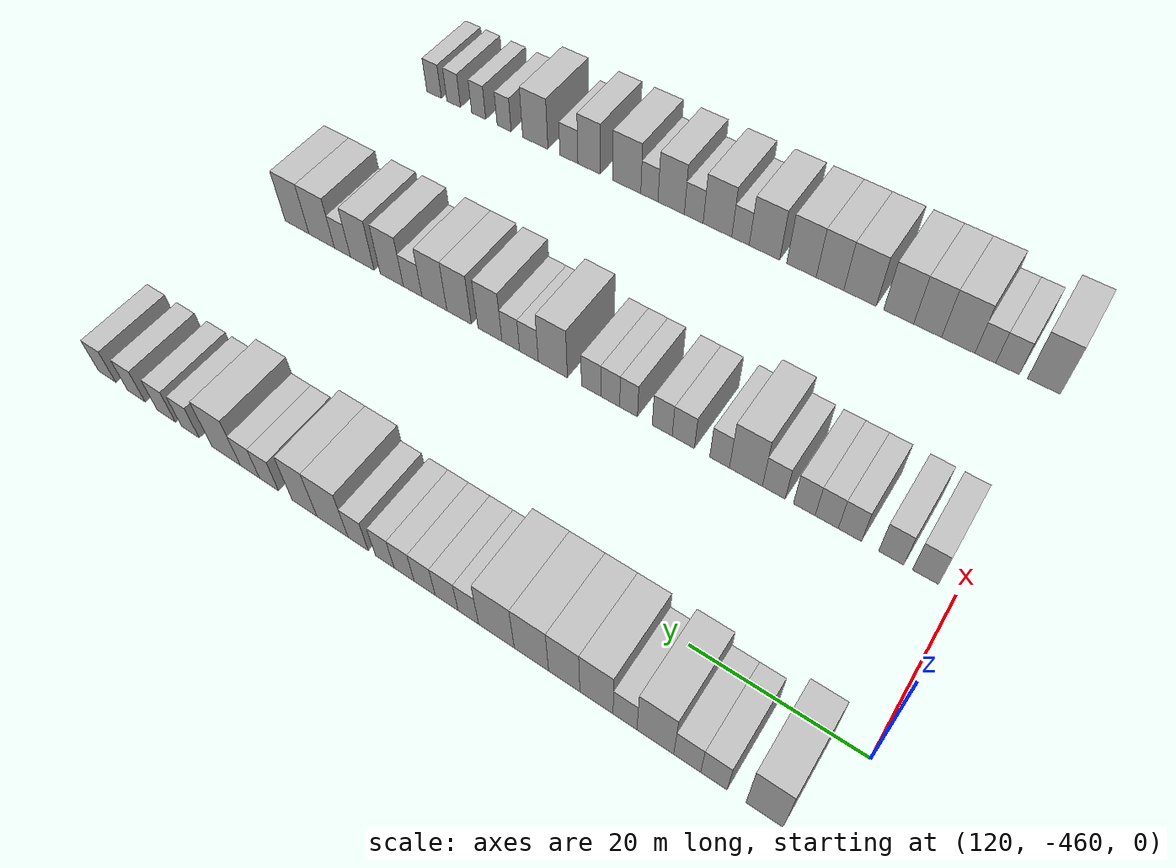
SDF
<sdf version="1.6">
 <world name="default">
  <model name="building_694">
   <static>1</static>
   <pose>115.0000 -454.0621 0 0.000000 0.000000 0.000000</pose>
   <link name="link">
    <pose>0 0 4.50 0 0 0</pose>
    <collision name="collision"><geometry><box><size>10.0000 3.8624 9.0000</size></box></geometry></collision>
    <visual name="visual">
     <cast_shadows>0</cast_shadows>
     <geometry><box><size>10.0000 3.8624 9.0000</size></box></geometry>
     <material>
      <script>
       <uri>model://HANNAS_wall/materials/scripts</uri>
       <uri>model://HANNAS_wall/materials/textures</uri>
       <name>vrc/HANNAS_wall</name>
      </script>
     </material>
    </visual>
   </link>
  </model>
  <model name="building_695">
   <static>1</static>
   <pose>115.0000 -448.7033 0 0.000000 0.000000 0.000000</pose>
   <link name="link">
    <pose>0 0 3.00 0 0 0</pose>
    <collision name="collision"><geometry><box><size>10.0000 2.8552 6.0000</size></box></geometry></collision>
    <visual name="visual">
     <cast_shadows>0</cast_shadows>
     <geometry><box><size>10.0000 2.8552 6.0000</size></box></geometry>
     <material>
      <script>
       <uri>model://HANNAS_wall/materials/scripts</uri>
       <uri>model://HANNAS_wall/materials/textures</uri>
       <name>vrc/HANNAS_wall</name>
      </script>
     </material>
    </visual>
   </link>
  </model>
  <model name="building_696">
   <static>1</static>
   <pose>115.0000 -445.7946 0 0.000000 0.000000 0.000000</pose>
   <link name="link">
    <pose>0 0 3.00 0 0 0</pose>
    <collision name="collision"><geometry><box><size>10.0000 2.9622 6.0000</size></box></geometry></collision>
    <visual name="visual">
     <cast_shadows>0</cast_shadows>
     <geometry><box><size>10.0000 2.9622 6.0000</size></box></geometry>
     <material>
      <script>
       <uri>model://HANNAS_wall/materials/scripts</uri>
       <uri>model://HANNAS_wall/materials/textures</uri>
       <name>vrc/HANNAS_wall</name>
      </script>
     </material>
    </visual>
   </link>
  </model>
  <model name="building_697">
   <static>1</static>
   <pose>115.0000 -442.2483 0 0.000000 0.000000 0.000000</pose>
   <link name="link">
    <pose>0 0 4.50 0 0 0</pose>
    <collision name="collision"><geometry><box><size>10.0000 4.1305 9.0000</size></box></geometry></collision>
    <visual name="visual">
     <cast_shadows>0</cast_shadows>
     <geometry><box><size>10.0000 4.1305 9.0000</size></box></geometry>
     <material>
      <script>
       <uri>model://HANNAS_wall/materials/scripts</uri>
       <uri>model://HANNAS_wall/materials/textures</uri>
       <name>vrc/HANNAS_wall</name>
      </script>
     </material>
    </visual>
   </link>
  </model>
  <model name="building_698">
   <static>1</static>
   <pose>115.0000 -438.8163 0 0.000000 0.000000 0.000000</pose>
   <link name="link">
    <pose>0 0 3.00 0 0 0</pose>
    <collision name="collision"><geometry><box><size>10.0000 2.7336 6.0000</size></box></geometry></collision>
    <visual name="visual">
     <cast_shadows>0</cast_shadows>
     <geometry><box><size>10.0000 2.7336 6.0000</size></box></geometry>
     <material>
      <script>
       <uri>model://HANNAS_wall/materials/scripts</uri>
       <uri>model://HANNAS_wall/materials/textures</uri>
       <name>vrc/HANNAS_wall</name>
      </script>
     </material>
    </visual>
   </link>
  </model>
  <model name="building_699">
   <static>1</static>
   <pose>115.0000 -435.5148 0 0.000000 0.000000 0.000000</pose>
   <link name="link">
    <pose>0 0 4.50 0 0 0</pose>
    <collision name="collision"><geometry><box><size>10.0000 3.8695 9.0000</size></box></geometry></collision>
    <visual name="visual">
     <cast_shadows>0</cast_shadows>
     <geometry><box><size>10.0000 3.8695 9.0000</size></box></geometry>
     <material>
      <script>
       <uri>model://HANNAS_wall/materials/scripts</uri>
       <uri>model://HANNAS_wall/materials/textures</uri>
       <name>vrc/HANNAS_wall</name>
      </script>
     </material>
    </visual>
   </link>
  </model>
  <model name="building_700">
   <static>1</static>
   <pose>115.0000 -431.7060 0 0.000000 0.000000 0.000000</pose>
   <link name="link">
    <pose>0 0 4.50 0 0 0</pose>
    <collision name="collision"><geometry><box><size>10.0000 3.7481 9.0000</size></box></geometry></collision>
    <visual name="visual">
     <cast_shadows>0</cast_shadows>
     <geometry><box><size>10.0000 3.7481 9.0000</size></box></geometry>
     <material>
      <script>
       <uri>model://HANNAS_wall/materials/scripts</uri>
       <uri>model://HANNAS_wall/materials/textures</uri>
       <name>vrc/HANNAS_wall</name>
      </script>
     </material>
    </visual>
   </link>
  </model>
  <model name="building_701">
   <static>1</static>
   <pose>115.0000 -427.7330 0 0.000000 0.000000 0.000000</pose>
   <link name="link">
    <pose>0 0 4.50 0 0 0</pose>
    <collision name="collision"><geometry><box><size>10.0000 4.1979 9.0000</size></box></geometry></collision>
    <visual name="visual">
     <cast_shadows>0</cast_shadows>
     <geometry><box><size>10.0000 4.1979 9.0000</size></box></geometry>
     <material>
      <script>
       <uri>model://HANNAS_wall/materials/scripts</uri>
       <uri>model://HANNAS_wall/materials/textures</uri>
       <name>vrc/HANNAS_wall</name>
      </script>
     </material>
    </visual>
   </link>
  </model>
  <model name="building_702">
   <static>1</static>
   <pose>115.0000 -423.3927 0 0.000000 0.000000 0.000000</pose>
   <link name="link">
    <pose>0 0 4.50 0 0 0</pose>
    <collision name="collision"><geometry><box><size>10.0000 4.4827 9.0000</size></box></geometry></collision>
    <visual name="visual">
     <cast_shadows>0</cast_shadows>
     <geometry><box><size>10.0000 4.4827 9.0000</size></box></geometry>
     <material>
      <script>
       <uri>model://HANNAS_wall/materials/scripts</uri>
       <uri>model://HANNAS_wall/materials/textures</uri>
       <name>vrc/HANNAS_wall</name>
      </script>
     </material>
    </visual>
   </link>
  </model>
  <model name="building_703">
   <static>1</static>
   <pose>115.0000 -419.8408 0 0.000000 0.000000 0.000000</pose>
   <link name="link">
    <pose>0 0 3.00 0 0 0</pose>
    <collision name="collision"><geometry><box><size>10.0000 2.6210 6.0000</size></box></geometry></collision>
    <visual name="visual">
     <cast_shadows>0</cast_shadows>
     <geometry><box><size>10.0000 2.6210 6.0000</size></box></geometry>
     <material>
      <script>
       <uri>model://HANNAS_wall/materials/scripts</uri>
       <uri>model://HANNAS_wall/materials/textures</uri>
       <name>vrc/HANNAS_wall</name>
      </script>
     </material>
    </visual>
   </link>
  </model>
  <model name="building_704">
   <static>1</static>
   <pose>115.0000 -417.0368 0 0.000000 0.000000 0.000000</pose>
   <link name="link">
    <pose>0 0 3.00 0 0 0</pose>
    <collision name="collision"><geometry><box><size>10.0000 2.9869 6.0000</size></box></geometry></collision>
    <visual name="visual">
     <cast_shadows>0</cast_shadows>
     <geometry><box><size>10.0000 2.9869 6.0000</size></box></geometry>
     <material>
      <script>
       <uri>model://HANNAS_wall/materials/scripts</uri>
       <uri>model://HANNAS_wall/materials/textures</uri>
       <name>vrc/HANNAS_wall</name>
      </script>
     </material>
    </visual>
   </link>
  </model>
  <model name="building_705">
   <static>1</static>
   <pose>115.0000 -414.1468 0 0.000000 0.000000 0.000000</pose>
   <link name="link">
    <pose>0 0 3.00 0 0 0</pose>
    <collision name="collision"><geometry><box><size>10.0000 2.7932 6.0000</size></box></geometry></collision>
    <visual name="visual">
     <cast_shadows>0</cast_shadows>
     <geometry><box><size>10.0000 2.7932 6.0000</size></box></geometry>
     <material>
      <script>
       <uri>model://HANNAS_wall/materials/scripts</uri>
       <uri>model://HANNAS_wall/materials/textures</uri>
       <name>vrc/HANNAS_wall</name>
      </script>
     </material>
    </visual>
   </link>
  </model>
  <model name="building_706">
   <static>1</static>
   <pose>115.0000 -411.3969 0 0.000000 0.000000 0.000000</pose>
   <link name="link">
    <pose>0 0 3.00 0 0 0</pose>
    <collision name="collision"><geometry><box><size>10.0000 2.7065 6.0000</size></box></geometry></collision>
    <visual name="visual">
     <cast_shadows>0</cast_shadows>
     <geometry><box><size>10.0000 2.7065 6.0000</size></box></geometry>
     <material>
      <script>
       <uri>model://HANNAS_wall/materials/scripts</uri>
       <uri>model://HANNAS_wall/materials/textures</uri>
       <name>vrc/HANNAS_wall</name>
      </script>
     </material>
    </visual>
   </link>
  </model>
  <model name="building_707">
   <static>1</static>
   <pose>115.0000 -408.7664 0 0.000000 0.000000 0.000000</pose>
   <link name="link">
    <pose>0 0 3.00 0 0 0</pose>
    <collision name="collision"><geometry><box><size>10.0000 2.5545 6.0000</size></box></geometry></collision>
    <visual name="visual">
     <cast_shadows>0</cast_shadows>
     <geometry><box><size>10.0000 2.5545 6.0000</size></box></geometry>
     <material>
      <script>
       <uri>model://HANNAS_wall/materials/scripts</uri>
       <uri>model://HANNAS_wall/materials/textures</uri>
       <name>vrc/HANNAS_wall</name>
      </script>
     </material>
    </visual>
   </link>
  </model>
  <model name="building_708">
   <static>1</static>
   <pose>115.0000 -405.0866 0 0.000000 0.000000 0.000000</pose>
   <link name="link">
    <pose>0 0 3.00 0 0 0</pose>
    <collision name="collision"><geometry><box><size>10.0000 2.8052 6.0000</size></box></geometry></collision>
    <visual name="visual">
     <cast_shadows>0</cast_shadows>
     <geometry><box><size>10.0000 2.8052 6.0000</size></box></geometry>
     <material>
      <script>
       <uri>model://HANNAS_wall/materials/scripts</uri>
       <uri>model://HANNAS_wall/materials/textures</uri>
       <name>vrc/HANNAS_wall</name>
      </script>
     </material>
    </visual>
   </link>
  </model>
  <model name="building_709">
   <static>1</static>
   <pose>115.0000 -401.4657 0 0.000000 0.000000 0.000000</pose>
   <link name="link">
    <pose>0 0 4.50 0 0 0</pose>
    <collision name="collision"><geometry><box><size>10.0000 4.4364 9.0000</size></box></geometry></collision>
    <visual name="visual">
     <cast_shadows>0</cast_shadows>
     <geometry><box><size>10.0000 4.4364 9.0000</size></box></geometry>
     <material>
      <script>
       <uri>model://HANNAS_wall/materials/scripts</uri>
       <uri>model://HANNAS_wall/materials/textures</uri>
       <name>vrc/HANNAS_wall</name>
      </script>
     </material>
    </visual>
   </link>
  </model>
  <model name="building_710">
   <static>1</static>
   <pose>115.0000 -397.4414 0 0.000000 0.000000 0.000000</pose>
   <link name="link">
    <pose>0 0 4.50 0 0 0</pose>
    <collision name="collision"><geometry><box><size>10.0000 3.6122 9.0000</size></box></geometry></collision>
    <visual name="visual">
     <cast_shadows>0</cast_shadows>
     <geometry><box><size>10.0000 3.6122 9.0000</size></box></geometry>
     <material>
      <script>
       <uri>model://HANNAS_wall/materials/scripts</uri>
       <uri>model://HANNAS_wall/materials/textures</uri>
       <name>vrc/HANNAS_wall</name>
      </script>
     </material>
    </visual>
   </link>
  </model>
  <model name="building_711">
   <static>1</static>
   <pose>115.0000 -392.2185 0 0.000000 0.000000 0.000000</pose>
   <link name="link">
    <pose>0 0 3.00 0 0 0</pose>
    <collision name="collision"><geometry><box><size>10.0000 2.8337 6.0000</size></box></geometry></collision>
    <visual name="visual">
     <cast_shadows>0</cast_shadows>
     <geometry><box><size>10.0000 2.8337 6.0000</size></box></geometry>
     <material>
      <script>
       <uri>model://HANNAS_wall/materials/scripts</uri>
       <uri>model://HANNAS_wall/materials/textures</uri>
       <name>vrc/HANNAS_wall</name>
      </script>
     </material>
    </visual>
   </link>
  </model>
  <model name="building_712">
   <static>1</static>
   <pose>115.0000 -389.3418 0 0.000000 0.000000 0.000000</pose>
   <link name="link">
    <pose>0 0 3.00 0 0 0</pose>
    <collision name="collision"><geometry><box><size>10.0000 2.9197 6.0000</size></box></geometry></collision>
    <visual name="visual">
     <cast_shadows>0</cast_shadows>
     <geometry><box><size>10.0000 2.9197 6.0000</size></box></geometry>
     <material>
      <script>
       <uri>model://HANNAS_wall/materials/scripts</uri>
       <uri>model://HANNAS_wall/materials/textures</uri>
       <name>vrc/HANNAS_wall</name>
      </script>
     </material>
    </visual>
   </link>
  </model>
  <model name="building_713">
   <static>1</static>
   <pose>115.0000 -385.6622 0 0.000000 0.000000 0.000000</pose>
   <link name="link">
    <pose>0 0 4.50 0 0 0</pose>
    <collision name="collision"><geometry><box><size>10.0000 4.4396 9.0000</size></box></geometry></collision>
    <visual name="visual">
     <cast_shadows>0</cast_shadows>
     <geometry><box><size>10.0000 4.4396 9.0000</size></box></geometry>
     <material>
      <script>
       <uri>model://HANNAS_wall/materials/scripts</uri>
       <uri>model://HANNAS_wall/materials/textures</uri>
       <name>vrc/HANNAS_wall</name>
      </script>
     </material>
    </visual>
   </link>
  </model>
  <model name="building_714">
   <static>1</static>
   <pose>115.0000 -380.0430 0 0.000000 0.000000 0.000000</pose>
   <link name="link">
    <pose>0 0 3.00 0 0 0</pose>
    <collision name="collision"><geometry><box><size>10.0000 2.7987 6.0000</size></box></geometry></collision>
    <visual name="visual">
     <cast_shadows>0</cast_shadows>
     <geometry><box><size>10.0000 2.7987 6.0000</size></box></geometry>
     <material>
      <script>
       <uri>model://HANNAS_wall/materials/scripts</uri>
       <uri>model://HANNAS_wall/materials/textures</uri>
       <name>vrc/HANNAS_wall</name>
      </script>
     </material>
    </visual>
   </link>
  </model>
  <model name="building_715">
   <static>1</static>
   <pose>115.0000 -376.1594 0 0.000000 0.000000 0.000000</pose>
   <link name="link">
    <pose>0 0 3.00 0 0 0</pose>
    <collision name="collision"><geometry><box><size>10.0000 2.9685 6.0000</size></box></geometry></collision>
    <visual name="visual">
     <cast_shadows>0</cast_shadows>
     <geometry><box><size>10.0000 2.9685 6.0000</size></box></geometry>
     <material>
      <script>
       <uri>model://HANNAS_wall/materials/scripts</uri>
       <uri>model://HANNAS_wall/materials/textures</uri>
       <name>vrc/HANNAS_wall</name>
      </script>
     </material>
    </visual>
   </link>
  </model>
  <model name="building_716">
   <static>1</static>
   <pose>115.0000 -371.2116 0 0.000000 0.000000 0.000000</pose>
   <link name="link">
    <pose>0 0 3.00 0 0 0</pose>
    <collision name="collision"><geometry><box><size>10.0000 2.9271 6.0000</size></box></geometry></collision>
    <visual name="visual">
     <cast_shadows>0</cast_shadows>
     <geometry><box><size>10.0000 2.9271 6.0000</size></box></geometry>
     <material>
      <script>
       <uri>model://HANNAS_wall/materials/scripts</uri>
       <uri>model://HANNAS_wall/materials/textures</uri>
       <name>vrc/HANNAS_wall</name>
      </script>
     </material>
    </visual>
   </link>
  </model>
  <model name="building_717">
   <static>1</static>
   <pose>115.0000 -366.2762 0 0.000000 0.000000 0.000000</pose>
   <link name="link">
    <pose>0 0 3.00 0 0 0</pose>
    <collision name="collision"><geometry><box><size>10.0000 2.9435 6.0000</size></box></geometry></collision>
    <visual name="visual">
     <cast_shadows>0</cast_shadows>
     <geometry><box><size>10.0000 2.9435 6.0000</size></box></geometry>
     <material>
      <script>
       <uri>model://HANNAS_wall/materials/scripts</uri>
       <uri>model://HANNAS_wall/materials/textures</uri>
       <name>vrc/HANNAS_wall</name>
      </script>
     </material>
    </visual>
   </link>
  </model>
  <model name="building_922">
   <static>1</static>
   <pose>145.0000 -456.5389 0 0.000000 0.000000 0.000000</pose>
   <link name="link">
    <pose>0 0 3.00 0 0 0</pose>
    <collision name="collision"><geometry><box><size>10.0000 2.9221 6.0000</size></box></geometry></collision>
    <visual name="visual">
     <cast_shadows>0</cast_shadows>
     <geometry><box><size>10.0000 2.9221 6.0000</size></box></geometry>
     <material>
      <script>
       <uri>model://HANNAS_wall/materials/scripts</uri>
       <uri>model://HANNAS_wall/materials/textures</uri>
       <name>vrc/HANNAS_wall</name>
      </script>
     </material>
    </visual>
   </link>
  </model>
  <model name="building_923">
   <static>1</static>
   <pose>145.0000 -452.6384 0 0.000000 0.000000 0.000000</pose>
   <link name="link">
    <pose>0 0 3.00 0 0 0</pose>
    <collision name="collision"><geometry><box><size>10.0000 2.8790 6.0000</size></box></geometry></collision>
    <visual name="visual">
     <cast_shadows>0</cast_shadows>
     <geometry><box><size>10.0000 2.8790 6.0000</size></box></geometry>
     <material>
      <script>
       <uri>model://HANNAS_wall/materials/scripts</uri>
       <uri>model://HANNAS_wall/materials/textures</uri>
       <name>vrc/HANNAS_wall</name>
      </script>
     </material>
    </visual>
   </link>
  </model>
  <model name="building_924">
   <static>1</static>
   <pose>145.0000 -447.8327 0 0.000000 0.000000 0.000000</pose>
   <link name="link">
    <pose>0 0 3.00 0 0 0</pose>
    <collision name="collision"><geometry><box><size>10.0000 2.7324 6.0000</size></box></geometry></collision>
    <visual name="visual">
     <cast_shadows>0</cast_shadows>
     <geometry><box><size>10.0000 2.7324 6.0000</size></box></geometry>
     <material>
      <script>
       <uri>model://HANNAS_wall/materials/scripts</uri>
       <uri>model://HANNAS_wall/materials/textures</uri>
       <name>vrc/HANNAS_wall</name>
      </script>
     </material>
    </visual>
   </link>
  </model>
  <model name="building_925">
   <static>1</static>
   <pose>145.0000 -445.0804 0 0.000000 0.000000 0.000000</pose>
   <link name="link">
    <pose>0 0 3.00 0 0 0</pose>
    <collision name="collision"><geometry><box><size>10.0000 2.7722 6.0000</size></box></geometry></collision>
    <visual name="visual">
     <cast_shadows>0</cast_shadows>
     <geometry><box><size>10.0000 2.7722 6.0000</size></box></geometry>
     <material>
      <script>
       <uri>model://HANNAS_wall/materials/scripts</uri>
       <uri>model://HANNAS_wall/materials/textures</uri>
       <name>vrc/HANNAS_wall</name>
      </script>
     </material>
    </visual>
   </link>
  </model>
  <model name="building_926">
   <static>1</static>
   <pose>145.0000 -442.3751 0 0.000000 0.000000 0.000000</pose>
   <link name="link">
    <pose>0 0 3.00 0 0 0</pose>
    <collision name="collision"><geometry><box><size>10.0000 2.6384 6.0000</size></box></geometry></collision>
    <visual name="visual">
     <cast_shadows>0</cast_shadows>
     <geometry><box><size>10.0000 2.6384 6.0000</size></box></geometry>
     <material>
      <script>
       <uri>model://HANNAS_wall/materials/scripts</uri>
       <uri>model://HANNAS_wall/materials/textures</uri>
       <name>vrc/HANNAS_wall</name>
      </script>
     </material>
    </visual>
   </link>
  </model>
  <model name="building_927">
   <static>1</static>
   <pose>145.0000 -438.6374 0 0.000000 0.000000 0.000000</pose>
   <link name="link">
    <pose>0 0 3.00 0 0 0</pose>
    <collision name="collision"><geometry><box><size>10.0000 2.8370 6.0000</size></box></geometry></collision>
    <visual name="visual">
     <cast_shadows>0</cast_shadows>
     <geometry><box><size>10.0000 2.8370 6.0000</size></box></geometry>
     <material>
      <script>
       <uri>model://HANNAS_wall/materials/scripts</uri>
       <uri>model://HANNAS_wall/materials/textures</uri>
       <name>vrc/HANNAS_wall</name>
      </script>
     </material>
    </visual>
   </link>
  </model>
  <model name="building_928">
   <static>1</static>
   <pose>145.0000 -435.1381 0 0.000000 0.000000 0.000000</pose>
   <link name="link">
    <pose>0 0 4.50 0 0 0</pose>
    <collision name="collision"><geometry><box><size>10.0000 4.1615 9.0000</size></box></geometry></collision>
    <visual name="visual">
     <cast_shadows>0</cast_shadows>
     <geometry><box><size>10.0000 4.1615 9.0000</size></box></geometry>
     <material>
      <script>
       <uri>model://HANNAS_wall/materials/scripts</uri>
       <uri>model://HANNAS_wall/materials/textures</uri>
       <name>vrc/HANNAS_wall</name>
      </script>
     </material>
    </visual>
   </link>
  </model>
  <model name="building_929">
   <static>1</static>
   <pose>145.0000 -431.7931 0 0.000000 0.000000 0.000000</pose>
   <link name="link">
    <pose>0 0 3.00 0 0 0</pose>
    <collision name="collision"><geometry><box><size>10.0000 2.5285 6.0000</size></box></geometry></collision>
    <visual name="visual">
     <cast_shadows>0</cast_shadows>
     <geometry><box><size>10.0000 2.5285 6.0000</size></box></geometry>
     <material>
      <script>
       <uri>model://HANNAS_wall/materials/scripts</uri>
       <uri>model://HANNAS_wall/materials/textures</uri>
       <name>vrc/HANNAS_wall</name>
      </script>
     </material>
    </visual>
   </link>
  </model>
  <model name="building_930">
   <static>1</static>
   <pose>145.0000 -427.0708 0 0.000000 0.000000 0.000000</pose>
   <link name="link">
    <pose>0 0 3.00 0 0 0</pose>
    <collision name="collision"><geometry><box><size>10.0000 2.9160 6.0000</size></box></geometry></collision>
    <visual name="visual">
     <cast_shadows>0</cast_shadows>
     <geometry><box><size>10.0000 2.9160 6.0000</size></box></geometry>
     <material>
      <script>
       <uri>model://HANNAS_wall/materials/scripts</uri>
       <uri>model://HANNAS_wall/materials/textures</uri>
       <name>vrc/HANNAS_wall</name>
      </script>
     </material>
    </visual>
   </link>
  </model>
  <model name="building_931">
   <static>1</static>
   <pose>145.0000 -424.2770 0 0.000000 0.000000 0.000000</pose>
   <link name="link">
    <pose>0 0 3.00 0 0 0</pose>
    <collision name="collision"><geometry><box><size>10.0000 2.6717 6.0000</size></box></geometry></collision>
    <visual name="visual">
     <cast_shadows>0</cast_shadows>
     <geometry><box><size>10.0000 2.6717 6.0000</size></box></geometry>
     <material>
      <script>
       <uri>model://HANNAS_wall/materials/scripts</uri>
       <uri>model://HANNAS_wall/materials/textures</uri>
       <name>vrc/HANNAS_wall</name>
      </script>
     </material>
    </visual>
   </link>
  </model>
  <model name="building_932">
   <static>1</static>
   <pose>145.0000 -419.7234 0 0.000000 0.000000 0.000000</pose>
   <link name="link">
    <pose>0 0 3.00 0 0 0</pose>
    <collision name="collision"><geometry><box><size>10.0000 2.4355 6.0000</size></box></geometry></collision>
    <visual name="visual">
     <cast_shadows>0</cast_shadows>
     <geometry><box><size>10.0000 2.4355 6.0000</size></box></geometry>
     <material>
      <script>
       <uri>model://HANNAS_wall/materials/scripts</uri>
       <uri>model://HANNAS_wall/materials/textures</uri>
       <name>vrc/HANNAS_wall</name>
      </script>
     </material>
    </visual>
   </link>
  </model>
  <model name="building_933">
   <static>1</static>
   <pose>145.0000 -417.1906 0 0.000000 0.000000 0.000000</pose>
   <link name="link">
    <pose>0 0 3.00 0 0 0</pose>
    <collision name="collision"><geometry><box><size>10.0000 2.6301 6.0000</size></box></geometry></collision>
    <visual name="visual">
     <cast_shadows>0</cast_shadows>
     <geometry><box><size>10.0000 2.6301 6.0000</size></box></geometry>
     <material>
      <script>
       <uri>model://HANNAS_wall/materials/scripts</uri>
       <uri>model://HANNAS_wall/materials/textures</uri>
       <name>vrc/HANNAS_wall</name>
      </script>
     </material>
    </visual>
   </link>
  </model>
  <model name="building_934">
   <static>1</static>
   <pose>145.0000 -414.5268 0 0.000000 0.000000 0.000000</pose>
   <link name="link">
    <pose>0 0 3.00 0 0 0</pose>
    <collision name="collision"><geometry><box><size>10.0000 2.6976 6.0000</size></box></geometry></collision>
    <visual name="visual">
     <cast_shadows>0</cast_shadows>
     <geometry><box><size>10.0000 2.6976 6.0000</size></box></geometry>
     <material>
      <script>
       <uri>model://HANNAS_wall/materials/scripts</uri>
       <uri>model://HANNAS_wall/materials/textures</uri>
       <name>vrc/HANNAS_wall</name>
      </script>
     </material>
    </visual>
   </link>
  </model>
  <model name="building_935">
   <static>1</static>
   <pose>145.0000 -409.0779 0 0.000000 0.000000 0.000000</pose>
   <link name="link">
    <pose>0 0 4.50 0 0 0</pose>
    <collision name="collision"><geometry><box><size>10.0000 4.2001 9.0000</size></box></geometry></collision>
    <visual name="visual">
     <cast_shadows>0</cast_shadows>
     <geometry><box><size>10.0000 4.2001 9.0000</size></box></geometry>
     <material>
      <script>
       <uri>model://HANNAS_wall/materials/scripts</uri>
       <uri>model://HANNAS_wall/materials/textures</uri>
       <name>vrc/HANNAS_wall</name>
      </script>
     </material>
    </visual>
   </link>
  </model>
  <model name="building_936">
   <static>1</static>
   <pose>145.0000 -405.6003 0 0.000000 0.000000 0.000000</pose>
   <link name="link">
    <pose>0 0 3.00 0 0 0</pose>
    <collision name="collision"><geometry><box><size>10.0000 2.7552 6.0000</size></box></geometry></collision>
    <visual name="visual">
     <cast_shadows>0</cast_shadows>
     <geometry><box><size>10.0000 2.7552 6.0000</size></box></geometry>
     <material>
      <script>
       <uri>model://HANNAS_wall/materials/scripts</uri>
       <uri>model://HANNAS_wall/materials/textures</uri>
       <name>vrc/HANNAS_wall</name>
      </script>
     </material>
    </visual>
   </link>
  </model>
  <model name="building_937">
   <static>1</static>
   <pose>145.0000 -402.9134 0 0.000000 0.000000 0.000000</pose>
   <link name="link">
    <pose>0 0 3.00 0 0 0</pose>
    <collision name="collision"><geometry><box><size>10.0000 2.6185 6.0000</size></box></geometry></collision>
    <visual name="visual">
     <cast_shadows>0</cast_shadows>
     <geometry><box><size>10.0000 2.6185 6.0000</size></box></geometry>
     <material>
      <script>
       <uri>model://HANNAS_wall/materials/scripts</uri>
       <uri>model://HANNAS_wall/materials/textures</uri>
       <name>vrc/HANNAS_wall</name>
      </script>
     </material>
    </visual>
   </link>
  </model>
  <model name="building_938">
   <static>1</static>
   <pose>145.0000 -399.7871 0 0.000000 0.000000 0.000000</pose>
   <link name="link">
    <pose>0 0 4.50 0 0 0</pose>
    <collision name="collision"><geometry><box><size>10.0000 3.6341 9.0000</size></box></geometry></collision>
    <visual name="visual">
     <cast_shadows>0</cast_shadows>
     <geometry><box><size>10.0000 3.6341 9.0000</size></box></geometry>
     <material>
      <script>
       <uri>model://HANNAS_wall/materials/scripts</uri>
       <uri>model://HANNAS_wall/materials/textures</uri>
       <name>vrc/HANNAS_wall</name>
      </script>
     </material>
    </visual>
   </link>
  </model>
  <model name="building_939">
   <static>1</static>
   <pose>145.0000 -395.0775 0 0.000000 0.000000 0.000000</pose>
   <link name="link">
    <pose>0 0 4.50 0 0 0</pose>
    <collision name="collision"><geometry><box><size>10.0000 3.7852 9.0000</size></box></geometry></collision>
    <visual name="visual">
     <cast_shadows>0</cast_shadows>
     <geometry><box><size>10.0000 3.7852 9.0000</size></box></geometry>
     <material>
      <script>
       <uri>model://HANNAS_wall/materials/scripts</uri>
       <uri>model://HANNAS_wall/materials/textures</uri>
       <name>vrc/HANNAS_wall</name>
      </script>
     </material>
    </visual>
   </link>
  </model>
  <model name="building_940">
   <static>1</static>
   <pose>145.0000 -391.2210 0 0.000000 0.000000 0.000000</pose>
   <link name="link">
    <pose>0 0 4.50 0 0 0</pose>
    <collision name="collision"><geometry><box><size>10.0000 3.9277 9.0000</size></box></geometry></collision>
    <visual name="visual">
     <cast_shadows>0</cast_shadows>
     <geometry><box><size>10.0000 3.9277 9.0000</size></box></geometry>
     <material>
      <script>
       <uri>model://HANNAS_wall/materials/scripts</uri>
       <uri>model://HANNAS_wall/materials/textures</uri>
       <name>vrc/HANNAS_wall</name>
      </script>
     </material>
    </visual>
   </link>
  </model>
  <model name="building_941">
   <static>1</static>
   <pose>145.0000 -387.7695 0 0.000000 0.000000 0.000000</pose>
   <link name="link">
    <pose>0 0 3.00 0 0 0</pose>
    <collision name="collision"><geometry><box><size>10.0000 2.9754 6.0000</size></box></geometry></collision>
    <visual name="visual">
     <cast_shadows>0</cast_shadows>
     <geometry><box><size>10.0000 2.9754 6.0000</size></box></geometry>
     <material>
      <script>
       <uri>model://HANNAS_wall/materials/scripts</uri>
       <uri>model://HANNAS_wall/materials/textures</uri>
       <name>vrc/HANNAS_wall</name>
      </script>
     </material>
    </visual>
   </link>
  </model>
  <model name="building_942">
   <static>1</static>
   <pose>145.0000 -384.3858 0 0.000000 0.000000 0.000000</pose>
   <link name="link">
    <pose>0 0 4.50 0 0 0</pose>
    <collision name="collision"><geometry><box><size>10.0000 3.7920 9.0000</size></box></geometry></collision>
    <visual name="visual">
     <cast_shadows>0</cast_shadows>
     <geometry><box><size>10.0000 3.7920 9.0000</size></box></geometry>
     <material>
      <script>
       <uri>model://HANNAS_wall/materials/scripts</uri>
       <uri>model://HANNAS_wall/materials/textures</uri>
       <name>vrc/HANNAS_wall</name>
      </script>
     </material>
    </visual>
   </link>
  </model>
  <model name="building_943">
   <static>1</static>
   <pose>145.0000 -379.5242 0 0.000000 0.000000 0.000000</pose>
   <link name="link">
    <pose>0 0 4.50 0 0 0</pose>
    <collision name="collision"><geometry><box><size>10.0000 3.9311 9.0000</size></box></geometry></collision>
    <visual name="visual">
     <cast_shadows>0</cast_shadows>
     <geometry><box><size>10.0000 3.9311 9.0000</size></box></geometry>
     <material>
      <script>
       <uri>model://HANNAS_wall/materials/scripts</uri>
       <uri>model://HANNAS_wall/materials/textures</uri>
       <name>vrc/HANNAS_wall</name>
      </script>
     </material>
    </visual>
   </link>
  </model>
  <model name="building_944">
   <static>1</static>
   <pose>145.0000 -376.2046 0 0.000000 0.000000 0.000000</pose>
   <link name="link">
    <pose>0 0 3.00 0 0 0</pose>
    <collision name="collision"><geometry><box><size>10.0000 2.7081 6.0000</size></box></geometry></collision>
    <visual name="visual">
     <cast_shadows>0</cast_shadows>
     <geometry><box><size>10.0000 2.7081 6.0000</size></box></geometry>
     <material>
      <script>
       <uri>model://HANNAS_wall/materials/scripts</uri>
       <uri>model://HANNAS_wall/materials/textures</uri>
       <name>vrc/HANNAS_wall</name>
      </script>
     </material>
    </visual>
   </link>
  </model>
  <model name="building_945">
   <static>1</static>
   <pose>145.0000 -372.6604 0 0.000000 0.000000 0.000000</pose>
   <link name="link">
    <pose>0 0 4.50 0 0 0</pose>
    <collision name="collision"><geometry><box><size>10.0000 4.3802 9.0000</size></box></geometry></collision>
    <visual name="visual">
     <cast_shadows>0</cast_shadows>
     <geometry><box><size>10.0000 4.3802 9.0000</size></box></geometry>
     <material>
      <script>
       <uri>model://HANNAS_wall/materials/scripts</uri>
       <uri>model://HANNAS_wall/materials/textures</uri>
       <name>vrc/HANNAS_wall</name>
      </script>
     </material>
    </visual>
   </link>
  </model>
  <model name="building_946">
   <static>1</static>
   <pose>145.0000 -368.3866 0 0.000000 0.000000 0.000000</pose>
   <link name="link">
    <pose>0 0 4.50 0 0 0</pose>
    <collision name="collision"><geometry><box><size>10.0000 4.1675 9.0000</size></box></geometry></collision>
    <visual name="visual">
     <cast_shadows>0</cast_shadows>
     <geometry><box><size>10.0000 4.1675 9.0000</size></box></geometry>
     <material>
      <script>
       <uri>model://HANNAS_wall/materials/scripts</uri>
       <uri>model://HANNAS_wall/materials/textures</uri>
       <name>vrc/HANNAS_wall</name>
      </script>
     </material>
    </visual>
   </link>
  </model>
  <model name="building_1144">
   <static>1</static>
   <pose>175.0000 -458.0045 0 0.000000 0.000000 0.000000</pose>
   <link name="link">
    <pose>0 0 4.50 0 0 0</pose>
    <collision name="collision"><geometry><box><size>10.0000 3.9911 9.0000</size></box></geometry></collision>
    <visual name="visual">
     <cast_shadows>0</cast_shadows>
     <geometry><box><size>10.0000 3.9911 9.0000</size></box></geometry>
     <material>
      <script>
       <uri>model://HANNAS_wall/materials/scripts</uri>
       <uri>model://HANNAS_wall/materials/textures</uri>
       <name>vrc/HANNAS_wall</name>
      </script>
     </material>
    </visual>
   </link>
  </model>
  <model name="building_1145">
   <static>1</static>
   <pose>175.0000 -453.5370 0 0.000000 0.000000 0.000000</pose>
   <link name="link">
    <pose>0 0 3.00 0 0 0</pose>
    <collision name="collision"><geometry><box><size>10.0000 2.9438 6.0000</size></box></geometry></collision>
    <visual name="visual">
     <cast_shadows>0</cast_shadows>
     <geometry><box><size>10.0000 2.9438 6.0000</size></box></geometry>
     <material>
      <script>
       <uri>model://HANNAS_wall/materials/scripts</uri>
       <uri>model://HANNAS_wall/materials/textures</uri>
       <name>vrc/HANNAS_wall</name>
      </script>
     </material>
    </visual>
   </link>
  </model>
  <model name="building_1146">
   <static>1</static>
   <pose>175.0000 -450.7583 0 0.000000 0.000000 0.000000</pose>
   <link name="link">
    <pose>0 0 3.00 0 0 0</pose>
    <collision name="collision"><geometry><box><size>10.0000 2.6136 6.0000</size></box></geometry></collision>
    <visual name="visual">
     <cast_shadows>0</cast_shadows>
     <geometry><box><size>10.0000 2.6136 6.0000</size></box></geometry>
     <material>
      <script>
       <uri>model://HANNAS_wall/materials/scripts</uri>
       <uri>model://HANNAS_wall/materials/textures</uri>
       <name>vrc/HANNAS_wall</name>
      </script>
     </material>
    </visual>
   </link>
  </model>
  <model name="building_1147">
   <static>1</static>
   <pose>175.0000 -447.3154 0 0.000000 0.000000 0.000000</pose>
   <link name="link">
    <pose>0 0 4.50 0 0 0</pose>
    <collision name="collision"><geometry><box><size>10.0000 4.2722 9.0000</size></box></geometry></collision>
    <visual name="visual">
     <cast_shadows>0</cast_shadows>
     <geometry><box><size>10.0000 4.2722 9.0000</size></box></geometry>
     <material>
      <script>
       <uri>model://HANNAS_wall/materials/scripts</uri>
       <uri>model://HANNAS_wall/materials/textures</uri>
       <name>vrc/HANNAS_wall</name>
      </script>
     </material>
    </visual>
   </link>
  </model>
  <model name="building_1148">
   <static>1</static>
   <pose>175.0000 -443.3533 0 0.000000 0.000000 0.000000</pose>
   <link name="link">
    <pose>0 0 4.50 0 0 0</pose>
    <collision name="collision"><geometry><box><size>10.0000 3.6522 9.0000</size></box></geometry></collision>
    <visual name="visual">
     <cast_shadows>0</cast_shadows>
     <geometry><box><size>10.0000 3.6522 9.0000</size></box></geometry>
     <material>
      <script>
       <uri>model://HANNAS_wall/materials/scripts</uri>
       <uri>model://HANNAS_wall/materials/textures</uri>
       <name>vrc/HANNAS_wall</name>
      </script>
     </material>
    </visual>
   </link>
  </model>
  <model name="building_1149">
   <static>1</static>
   <pose>175.0000 -439.5349 0 0.000000 0.000000 0.000000</pose>
   <link name="link">
    <pose>0 0 4.50 0 0 0</pose>
    <collision name="collision"><geometry><box><size>10.0000 3.9845 9.0000</size></box></geometry></collision>
    <visual name="visual">
     <cast_shadows>0</cast_shadows>
     <geometry><box><size>10.0000 3.9845 9.0000</size></box></geometry>
     <material>
      <script>
       <uri>model://HANNAS_wall/materials/scripts</uri>
       <uri>model://HANNAS_wall/materials/textures</uri>
       <name>vrc/HANNAS_wall</name>
      </script>
     </material>
    </visual>
   </link>
  </model>
  <model name="building_1150">
   <static>1</static>
   <pose>175.0000 -434.3258 0 0.000000 0.000000 0.000000</pose>
   <link name="link">
    <pose>0 0 4.50 0 0 0</pose>
    <collision name="collision"><geometry><box><size>10.0000 4.4336 9.0000</size></box></geometry></collision>
    <visual name="visual">
     <cast_shadows>0</cast_shadows>
     <geometry><box><size>10.0000 4.4336 9.0000</size></box></geometry>
     <material>
      <script>
       <uri>model://HANNAS_wall/materials/scripts</uri>
       <uri>model://HANNAS_wall/materials/textures</uri>
       <name>vrc/HANNAS_wall</name>
      </script>
     </material>
    </visual>
   </link>
  </model>
  <model name="building_1151">
   <static>1</static>
   <pose>175.0000 -430.1955 0 0.000000 0.000000 0.000000</pose>
   <link name="link">
    <pose>0 0 4.50 0 0 0</pose>
    <collision name="collision"><geometry><box><size>10.0000 3.8271 9.0000</size></box></geometry></collision>
    <visual name="visual">
     <cast_shadows>0</cast_shadows>
     <geometry><box><size>10.0000 3.8271 9.0000</size></box></geometry>
     <material>
      <script>
       <uri>model://HANNAS_wall/materials/scripts</uri>
       <uri>model://HANNAS_wall/materials/textures</uri>
       <name>vrc/HANNAS_wall</name>
      </script>
     </material>
    </visual>
   </link>
  </model>
  <model name="building_1152">
   <static>1</static>
   <pose>175.0000 -426.1900 0 0.000000 0.000000 0.000000</pose>
   <link name="link">
    <pose>0 0 4.50 0 0 0</pose>
    <collision name="collision"><geometry><box><size>10.0000 4.1839 9.0000</size></box></geometry></collision>
    <visual name="visual">
     <cast_shadows>0</cast_shadows>
     <geometry><box><size>10.0000 4.1839 9.0000</size></box></geometry>
     <material>
      <script>
       <uri>model://HANNAS_wall/materials/scripts</uri>
       <uri>model://HANNAS_wall/materials/textures</uri>
       <name>vrc/HANNAS_wall</name>
      </script>
     </material>
    </visual>
   </link>
  </model>
  <model name="building_1153">
   <static>1</static>
   <pose>175.0000 -420.8833 0 0.000000 0.000000 0.000000</pose>
   <link name="link">
    <pose>0 0 4.50 0 0 0</pose>
    <collision name="collision"><geometry><box><size>10.0000 4.4296 9.0000</size></box></geometry></collision>
    <visual name="visual">
     <cast_shadows>0</cast_shadows>
     <geometry><box><size>10.0000 4.4296 9.0000</size></box></geometry>
     <material>
      <script>
       <uri>model://HANNAS_wall/materials/scripts</uri>
       <uri>model://HANNAS_wall/materials/textures</uri>
       <name>vrc/HANNAS_wall</name>
      </script>
     </material>
    </visual>
   </link>
  </model>
  <model name="building_1154">
   <static>1</static>
   <pose>175.0000 -417.3833 0 0.000000 0.000000 0.000000</pose>
   <link name="link">
    <pose>0 0 3.00 0 0 0</pose>
    <collision name="collision"><geometry><box><size>10.0000 2.5704 6.0000</size></box></geometry></collision>
    <visual name="visual">
     <cast_shadows>0</cast_shadows>
     <geometry><box><size>10.0000 2.5704 6.0000</size></box></geometry>
     <material>
      <script>
       <uri>model://HANNAS_wall/materials/scripts</uri>
       <uri>model://HANNAS_wall/materials/textures</uri>
       <name>vrc/HANNAS_wall</name>
      </script>
     </material>
    </visual>
   </link>
  </model>
  <model name="building_1155">
   <static>1</static>
   <pose>175.0000 -413.9504 0 0.000000 0.000000 0.000000</pose>
   <link name="link">
    <pose>0 0 4.50 0 0 0</pose>
    <collision name="collision"><geometry><box><size>10.0000 4.2954 9.0000</size></box></geometry></collision>
    <visual name="visual">
     <cast_shadows>0</cast_shadows>
     <geometry><box><size>10.0000 4.2954 9.0000</size></box></geometry>
     <material>
      <script>
       <uri>model://HANNAS_wall/materials/scripts</uri>
       <uri>model://HANNAS_wall/materials/textures</uri>
       <name>vrc/HANNAS_wall</name>
      </script>
     </material>
    </visual>
   </link>
  </model>
  <model name="building_1156">
   <static>1</static>
   <pose>175.0000 -410.3755 0 0.000000 0.000000 0.000000</pose>
   <link name="link">
    <pose>0 0 3.00 0 0 0</pose>
    <collision name="collision"><geometry><box><size>10.0000 2.8543 6.0000</size></box></geometry></collision>
    <visual name="visual">
     <cast_shadows>0</cast_shadows>
     <geometry><box><size>10.0000 2.8543 6.0000</size></box></geometry>
     <material>
      <script>
       <uri>model://HANNAS_wall/materials/scripts</uri>
       <uri>model://HANNAS_wall/materials/textures</uri>
       <name>vrc/HANNAS_wall</name>
      </script>
     </material>
    </visual>
   </link>
  </model>
  <model name="building_1157">
   <static>1</static>
   <pose>175.0000 -406.9015 0 0.000000 0.000000 0.000000</pose>
   <link name="link">
    <pose>0 0 4.50 0 0 0</pose>
    <collision name="collision"><geometry><box><size>10.0000 4.0937 9.0000</size></box></geometry></collision>
    <visual name="visual">
     <cast_shadows>0</cast_shadows>
     <geometry><box><size>10.0000 4.0937 9.0000</size></box></geometry>
     <material>
      <script>
       <uri>model://HANNAS_wall/materials/scripts</uri>
       <uri>model://HANNAS_wall/materials/textures</uri>
       <name>vrc/HANNAS_wall</name>
      </script>
     </material>
    </visual>
   </link>
  </model>
  <model name="building_1158">
   <static>1</static>
   <pose>175.0000 -403.5068 0 0.000000 0.000000 0.000000</pose>
   <link name="link">
    <pose>0 0 3.00 0 0 0</pose>
    <collision name="collision"><geometry><box><size>10.0000 2.6958 6.0000</size></box></geometry></collision>
    <visual name="visual">
     <cast_shadows>0</cast_shadows>
     <geometry><box><size>10.0000 2.6958 6.0000</size></box></geometry>
     <material>
      <script>
       <uri>model://HANNAS_wall/materials/scripts</uri>
       <uri>model://HANNAS_wall/materials/textures</uri>
       <name>vrc/HANNAS_wall</name>
      </script>
     </material>
    </visual>
   </link>
  </model>
  <model name="building_1159">
   <static>1</static>
   <pose>175.0000 -399.9134 0 0.000000 0.000000 0.000000</pose>
   <link name="link">
    <pose>0 0 4.50 0 0 0</pose>
    <collision name="collision"><geometry><box><size>10.0000 4.4910 9.0000</size></box></geometry></collision>
    <visual name="visual">
     <cast_shadows>0</cast_shadows>
     <geometry><box><size>10.0000 4.4910 9.0000</size></box></geometry>
     <material>
      <script>
       <uri>model://HANNAS_wall/materials/scripts</uri>
       <uri>model://HANNAS_wall/materials/textures</uri>
       <name>vrc/HANNAS_wall</name>
      </script>
     </material>
    </visual>
   </link>
  </model>
  <model name="building_1160">
   <static>1</static>
   <pose>175.0000 -393.8354 0 0.000000 0.000000 0.000000</pose>
   <link name="link">
    <pose>0 0 4.50 0 0 0</pose>
    <collision name="collision"><geometry><box><size>10.0000 3.6650 9.0000</size></box></geometry></collision>
    <visual name="visual">
     <cast_shadows>0</cast_shadows>
     <geometry><box><size>10.0000 3.6650 9.0000</size></box></geometry>
     <material>
      <script>
       <uri>model://HANNAS_wall/materials/scripts</uri>
       <uri>model://HANNAS_wall/materials/textures</uri>
       <name>vrc/HANNAS_wall</name>
      </script>
     </material>
    </visual>
   </link>
  </model>
  <model name="building_1161">
   <static>1</static>
   <pose>175.0000 -390.5066 0 0.000000 0.000000 0.000000</pose>
   <link name="link">
    <pose>0 0 3.00 0 0 0</pose>
    <collision name="collision"><geometry><box><size>10.0000 2.9927 6.0000</size></box></geometry></collision>
    <visual name="visual">
     <cast_shadows>0</cast_shadows>
     <geometry><box><size>10.0000 2.9927 6.0000</size></box></geometry>
     <material>
      <script>
       <uri>model://HANNAS_wall/materials/scripts</uri>
       <uri>model://HANNAS_wall/materials/textures</uri>
       <name>vrc/HANNAS_wall</name>
      </script>
     </material>
    </visual>
   </link>
  </model>
  <model name="building_1162">
   <static>1</static>
   <pose>175.0000 -384.8598 0 0.000000 0.000000 0.000000</pose>
   <link name="link">
    <pose>0 0 4.50 0 0 0</pose>
    <collision name="collision"><geometry><box><size>10.0000 4.3010 9.0000</size></box></geometry></collision>
    <visual name="visual">
     <cast_shadows>0</cast_shadows>
     <geometry><box><size>10.0000 4.3010 9.0000</size></box></geometry>
     <material>
      <script>
       <uri>model://HANNAS_wall/materials/scripts</uri>
       <uri>model://HANNAS_wall/materials/textures</uri>
       <name>vrc/HANNAS_wall</name>
      </script>
     </material>
    </visual>
   </link>
  </model>
  <model name="building_1163">
   <static>1</static>
   <pose>175.0000 -379.4863 0 0.000000 0.000000 0.000000</pose>
   <link name="link">
    <pose>0 0 3.00 0 0 0</pose>
    <collision name="collision"><geometry><box><size>10.0000 2.4459 6.0000</size></box></geometry></collision>
    <visual name="visual">
     <cast_shadows>0</cast_shadows>
     <geometry><box><size>10.0000 2.4459 6.0000</size></box></geometry>
     <material>
      <script>
       <uri>model://HANNAS_wall/materials/scripts</uri>
       <uri>model://HANNAS_wall/materials/textures</uri>
       <name>vrc/HANNAS_wall</name>
      </script>
     </material>
    </visual>
   </link>
  </model>
  <model name="building_1164">
   <static>1</static>
   <pose>175.0000 -375.0168 0 0.000000 0.000000 0.000000</pose>
   <link name="link">
    <pose>0 0 3.00 0 0 0</pose>
    <collision name="collision"><geometry><box><size>10.0000 2.4931 6.0000</size></box></geometry></collision>
    <visual name="visual">
     <cast_shadows>0</cast_shadows>
     <geometry><box><size>10.0000 2.4931 6.0000</size></box></geometry>
     <material>
      <script>
       <uri>model://HANNAS_wall/materials/scripts</uri>
       <uri>model://HANNAS_wall/materials/textures</uri>
       <name>vrc/HANNAS_wall</name>
      </script>
     </material>
    </visual>
   </link>
  </model>
  <model name="building_1165">
   <static>1</static>
   <pose>175.0000 -370.5359 0 0.000000 0.000000 0.000000</pose>
   <link name="link">
    <pose>0 0 3.00 0 0 0</pose>
    <collision name="collision"><geometry><box><size>10.0000 2.4687 6.0000</size></box></geometry></collision>
    <visual name="visual">
     <cast_shadows>0</cast_shadows>
     <geometry><box><size>10.0000 2.4687 6.0000</size></box></geometry>
     <material>
      <script>
       <uri>model://HANNAS_wall/materials/scripts</uri>
       <uri>model://HANNAS_wall/materials/textures</uri>
       <name>vrc/HANNAS_wall</name>
      </script>
     </material>
    </visual>
   </link>
  </model>
  <model name="building_1166">
   <static>1</static>
   <pose>175.0000 -366.9721 0 0.000000 0.000000 0.000000</pose>
   <link name="link">
    <pose>0 0 3.00 0 0 0</pose>
    <collision name="collision"><geometry><box><size>10.0000 2.6589 6.0000</size></box></geometry></collision>
    <visual name="visual">
     <cast_shadows>0</cast_shadows>
     <geometry><box><size>10.0000 2.6589 6.0000</size></box></geometry>
     <material>
      <script>
       <uri>model://HANNAS_wall/materials/scripts</uri>
       <uri>model://HANNAS_wall/materials/textures</uri>
       <name>vrc/HANNAS_wall</name>
      </script>
     </material>
    </visual>
   </link>
  </model>
 </world>
</sdf>
